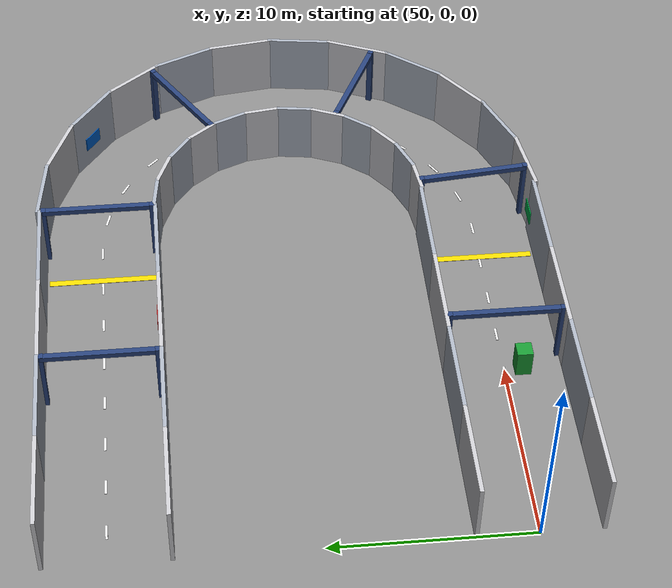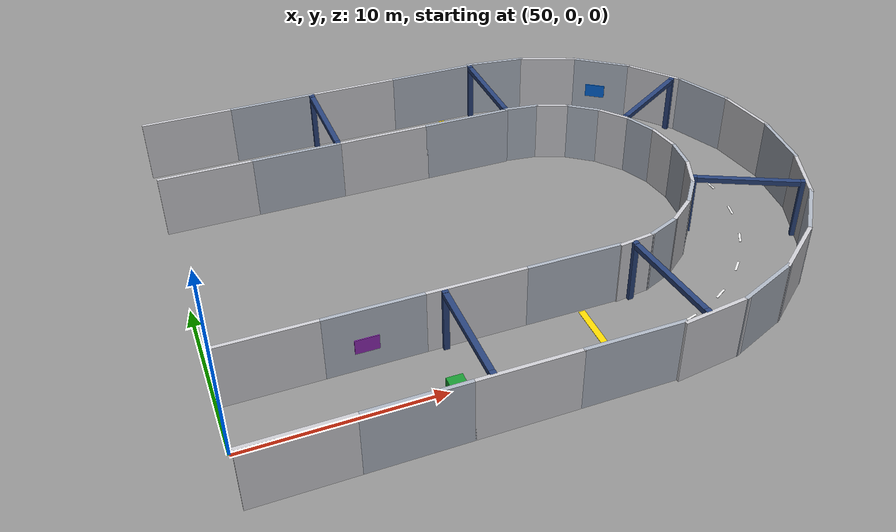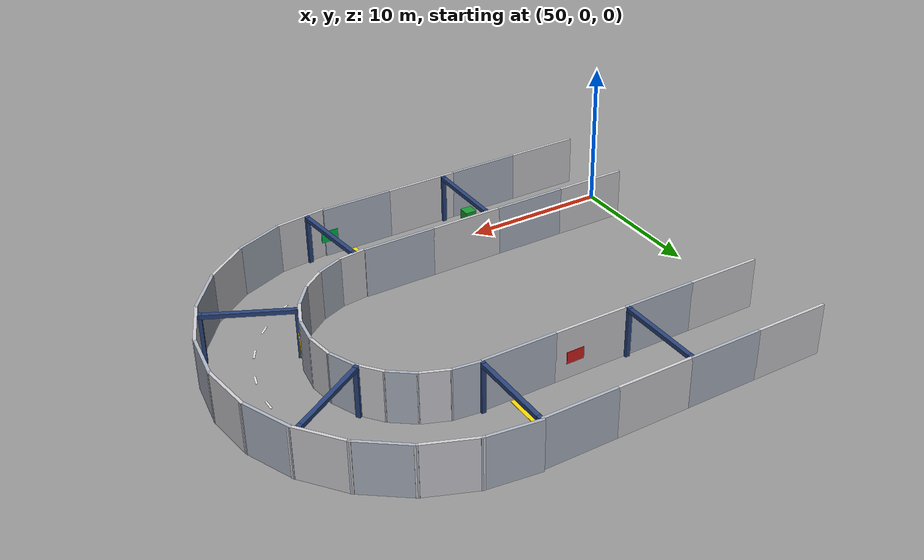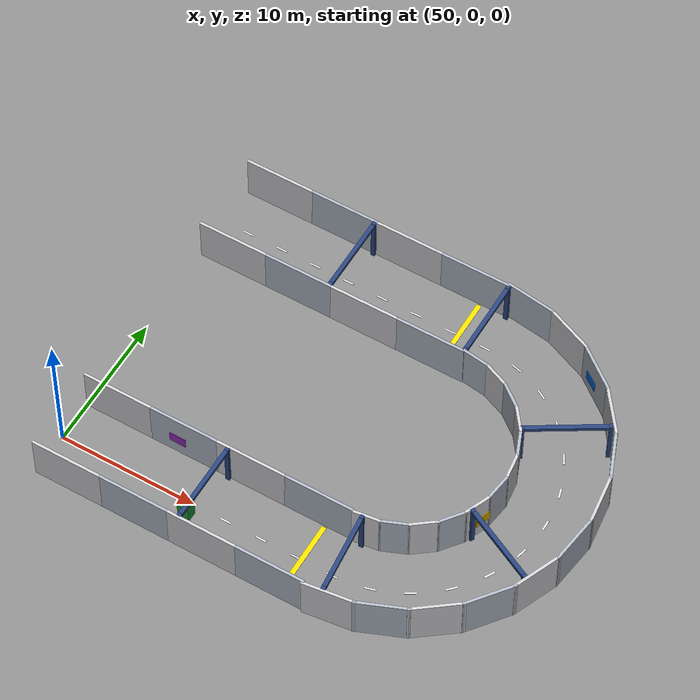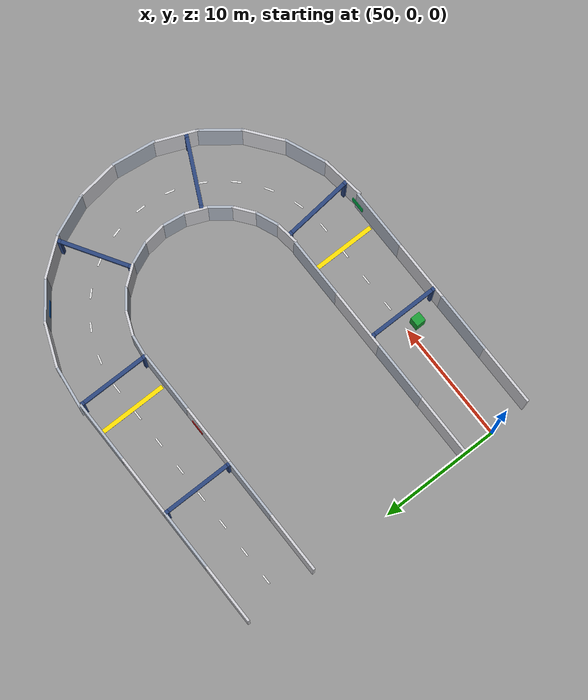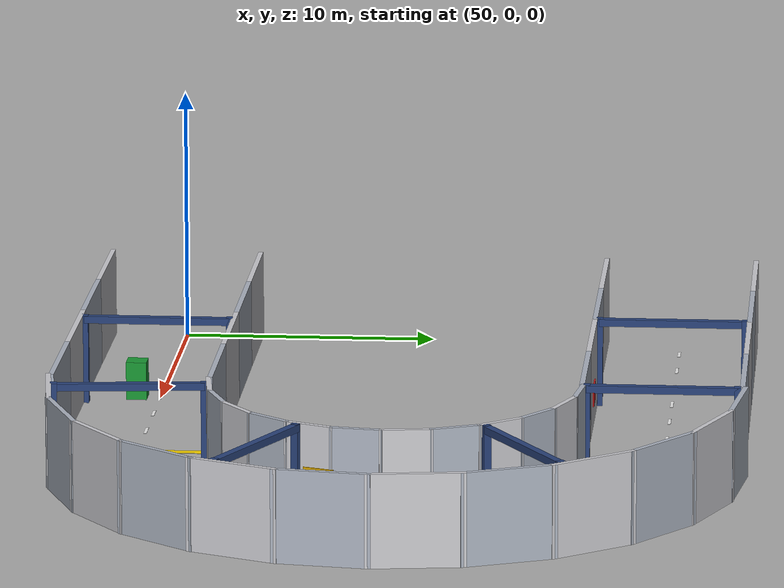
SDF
<sdf version="1.10">
 <world name="tunnel_circuit">
  <model name="tw_Ao_10">
   <static>true</static>
   <pose>52.500 -3.000 1.750 0 0 0.0000</pose>
   <link name="link">
    <collision name="col"><geometry><box><size>5.060 0.200 3.500</size></box></geometry></collision>
    <visual name="vis">
     <geometry><box><size>5.060 0.200 3.500</size></box></geometry>
     <material>
      <ambient>0.50 0.50 0.52 1</ambient>
      <diffuse>0.80 0.80 0.82 1</diffuse>
      <specular>0.1 0.1 0.1 1</specular>
      <pbr>
       <metal><albedo_map>detail.png</albedo_map><roughness>0.92</roughness><metalness>0.0</metalness></metal>
      </pbr>
     </material>
    </visual>
   </link>
  </model>
  <model name="tw_Ao_11">
   <static>true</static>
   <pose>57.500 -3.000 1.750 0 0 0.0000</pose>
   <link name="link">
    <collision name="col"><geometry><box><size>5.060 0.200 3.500</size></box></geometry></collision>
    <visual name="vis">
     <geometry><box><size>5.060 0.200 3.500</size></box></geometry>
     <material>
      <ambient>0.42 0.44 0.48 1</ambient>
      <diffuse>0.68 0.71 0.76 1</diffuse>
      <specular>0.1 0.1 0.1 1</specular>
      <pbr>
       <metal><albedo_map>detail.png</albedo_map><roughness>0.9</roughness><metalness>0.0</metalness></metal>
      </pbr>
     </material>
    </visual>
   </link>
  </model>
  <model name="tw_Ao_12">
   <static>true</static>
   <pose>62.500 -3.000 1.750 0 0 0.0000</pose>
   <link name="link">
    <collision name="col"><geometry><box><size>5.060 0.200 3.500</size></box></geometry></collision>
    <visual name="vis">
     <geometry><box><size>5.060 0.200 3.500</size></box></geometry>
     <material>
      <ambient>0.50 0.50 0.52 1</ambient>
      <diffuse>0.80 0.80 0.82 1</diffuse>
      <specular>0.1 0.1 0.1 1</specular>
      <pbr>
       <metal><albedo_map>detail.png</albedo_map><roughness>0.92</roughness><metalness>0.0</metalness></metal>
      </pbr>
     </material>
    </visual>
   </link>
  </model>
  <model name="tw_Ao_13">
   <static>true</static>
   <pose>67.500 -3.000 1.750 0 0 0.0000</pose>
   <link name="link">
    <collision name="col"><geometry><box><size>5.060 0.200 3.500</size></box></geometry></collision>
    <visual name="vis">
     <geometry><box><size>5.060 0.200 3.500</size></box></geometry>
     <material>
      <ambient>0.42 0.44 0.48 1</ambient>
      <diffuse>0.68 0.71 0.76 1</diffuse>
      <specular>0.1 0.1 0.1 1</specular>
      <pbr>
       <metal><albedo_map>detail.png</albedo_map><roughness>0.9</roughness><metalness>0.0</metalness></metal>
      </pbr>
     </material>
    </visual>
   </link>
  </model>
  <model name="tw_Ai_10">
   <static>true</static>
   <pose>52.500 3.000 1.750 0 0 0.0000</pose>
   <link name="link">
    <collision name="col"><geometry><box><size>5.060 0.200 3.500</size></box></geometry></collision>
    <visual name="vis">
     <geometry><box><size>5.060 0.200 3.500</size></box></geometry>
     <material>
      <ambient>0.50 0.50 0.52 1</ambient>
      <diffuse>0.80 0.80 0.82 1</diffuse>
      <specular>0.1 0.1 0.1 1</specular>
      <pbr>
       <metal><albedo_map>detail.png</albedo_map><roughness>0.92</roughness><metalness>0.0</metalness></metal>
      </pbr>
     </material>
    </visual>
   </link>
  </model>
  <model name="tw_Ai_11">
   <static>true</static>
   <pose>57.500 3.000 1.750 0 0 0.0000</pose>
   <link name="link">
    <collision name="col"><geometry><box><size>5.060 0.200 3.500</size></box></geometry></collision>
    <visual name="vis">
     <geometry><box><size>5.060 0.200 3.500</size></box></geometry>
     <material>
      <ambient>0.42 0.44 0.48 1</ambient>
      <diffuse>0.68 0.71 0.76 1</diffuse>
      <specular>0.1 0.1 0.1 1</specular>
      <pbr>
       <metal><albedo_map>detail.png</albedo_map><roughness>0.9</roughness><metalness>0.0</metalness></metal>
      </pbr>
     </material>
    </visual>
   </link>
  </model>
  <model name="tw_Ai_12">
   <static>true</static>
   <pose>62.500 3.000 1.750 0 0 0.0000</pose>
   <link name="link">
    <collision name="col"><geometry><box><size>5.060 0.200 3.500</size></box></geometry></collision>
    <visual name="vis">
     <geometry><box><size>5.060 0.200 3.500</size></box></geometry>
     <material>
      <ambient>0.50 0.50 0.52 1</ambient>
      <diffuse>0.80 0.80 0.82 1</diffuse>
      <specular>0.1 0.1 0.1 1</specular>
      <pbr>
       <metal><albedo_map>detail.png</albedo_map><roughness>0.92</roughness><metalness>0.0</metalness></metal>
      </pbr>
     </material>
    </visual>
   </link>
  </model>
  <model name="tw_Ai_13">
   <static>true</static>
   <pose>67.500 3.000 1.750 0 0 0.0000</pose>
   <link name="link">
    <collision name="col"><geometry><box><size>5.060 0.200 3.500</size></box></geometry></collision>
    <visual name="vis">
     <geometry><box><size>5.060 0.200 3.500</size></box></geometry>
     <material>
      <ambient>0.42 0.44 0.48 1</ambient>
      <diffuse>0.68 0.71 0.76 1</diffuse>
      <specular>0.1 0.1 0.1 1</specular>
      <pbr>
       <metal><albedo_map>detail.png</albedo_map><roughness>0.9</roughness><metalness>0.0</metalness></metal>
      </pbr>
     </material>
    </visual>
   </link>
  </model>
  <model name="tw_Bo_10">
   <static>true</static>
   <pose>52.500 23.000 1.750 0 0 0.0000</pose>
   <link name="link">
    <collision name="col"><geometry><box><size>5.060 0.200 3.500</size></box></geometry></collision>
    <visual name="vis">
     <geometry><box><size>5.060 0.200 3.500</size></box></geometry>
     <material>
      <ambient>0.50 0.50 0.52 1</ambient>
      <diffuse>0.80 0.80 0.82 1</diffuse>
      <specular>0.1 0.1 0.1 1</specular>
      <pbr>
       <metal><albedo_map>detail.png</albedo_map><roughness>0.92</roughness><metalness>0.0</metalness></metal>
      </pbr>
     </material>
    </visual>
   </link>
  </model>
  <model name="tw_Bo_11">
   <static>true</static>
   <pose>57.500 23.000 1.750 0 0 0.0000</pose>
   <link name="link">
    <collision name="col"><geometry><box><size>5.060 0.200 3.500</size></box></geometry></collision>
    <visual name="vis">
     <geometry><box><size>5.060 0.200 3.500</size></box></geometry>
     <material>
      <ambient>0.42 0.44 0.48 1</ambient>
      <diffuse>0.68 0.71 0.76 1</diffuse>
      <specular>0.1 0.1 0.1 1</specular>
      <pbr>
       <metal><albedo_map>detail.png</albedo_map><roughness>0.9</roughness><metalness>0.0</metalness></metal>
      </pbr>
     </material>
    </visual>
   </link>
  </model>
  <model name="tw_Bo_12">
   <static>true</static>
   <pose>62.500 23.000 1.750 0 0 0.0000</pose>
   <link name="link">
    <collision name="col"><geometry><box><size>5.060 0.200 3.500</size></box></geometry></collision>
    <visual name="vis">
     <geometry><box><size>5.060 0.200 3.500</size></box></geometry>
     <material>
      <ambient>0.50 0.50 0.52 1</ambient>
      <diffuse>0.80 0.80 0.82 1</diffuse>
      <specular>0.1 0.1 0.1 1</specular>
      <pbr>
       <metal><albedo_map>detail.png</albedo_map><roughness>0.92</roughness><metalness>0.0</metalness></metal>
      </pbr>
     </material>
    </visual>
   </link>
  </model>
  <model name="tw_Bo_13">
   <static>true</static>
   <pose>67.500 23.000 1.750 0 0 0.0000</pose>
   <link name="link">
    <collision name="col"><geometry><box><size>5.060 0.200 3.500</size></box></geometry></collision>
    <visual name="vis">
     <geometry><box><size>5.060 0.200 3.500</size></box></geometry>
     <material>
      <ambient>0.42 0.44 0.48 1</ambient>
      <diffuse>0.68 0.71 0.76 1</diffuse>
      <specular>0.1 0.1 0.1 1</specular>
      <pbr>
       <metal><albedo_map>detail.png</albedo_map><roughness>0.9</roughness><metalness>0.0</metalness></metal>
      </pbr>
     </material>
    </visual>
   </link>
  </model>
  <model name="tw_Bi_10">
   <static>true</static>
   <pose>52.500 17.000 1.750 0 0 0.0000</pose>
   <link name="link">
    <collision name="col"><geometry><box><size>5.060 0.200 3.500</size></box></geometry></collision>
    <visual name="vis">
     <geometry><box><size>5.060 0.200 3.500</size></box></geometry>
     <material>
      <ambient>0.50 0.50 0.52 1</ambient>
      <diffuse>0.80 0.80 0.82 1</diffuse>
      <specular>0.1 0.1 0.1 1</specular>
      <pbr>
       <metal><albedo_map>detail.png</albedo_map><roughness>0.92</roughness><metalness>0.0</metalness></metal>
      </pbr>
     </material>
    </visual>
   </link>
  </model>
  <model name="tw_Bi_11">
   <static>true</static>
   <pose>57.500 17.000 1.750 0 0 0.0000</pose>
   <link name="link">
    <collision name="col"><geometry><box><size>5.060 0.200 3.500</size></box></geometry></collision>
    <visual name="vis">
     <geometry><box><size>5.060 0.200 3.500</size></box></geometry>
     <material>
      <ambient>0.42 0.44 0.48 1</ambient>
      <diffuse>0.68 0.71 0.76 1</diffuse>
      <specular>0.1 0.1 0.1 1</specular>
      <pbr>
       <metal><albedo_map>detail.png</albedo_map><roughness>0.9</roughness><metalness>0.0</metalness></metal>
      </pbr>
     </material>
    </visual>
   </link>
  </model>
  <model name="tw_Bi_12">
   <static>true</static>
   <pose>62.500 17.000 1.750 0 0 0.0000</pose>
   <link name="link">
    <collision name="col"><geometry><box><size>5.060 0.200 3.500</size></box></geometry></collision>
    <visual name="vis">
     <geometry><box><size>5.060 0.200 3.500</size></box></geometry>
     <material>
      <ambient>0.50 0.50 0.52 1</ambient>
      <diffuse>0.80 0.80 0.82 1</diffuse>
      <specular>0.1 0.1 0.1 1</specular>
      <pbr>
       <metal><albedo_map>detail.png</albedo_map><roughness>0.92</roughness><metalness>0.0</metalness></metal>
      </pbr>
     </material>
    </visual>
   </link>
  </model>
  <model name="tw_Bi_13">
   <static>true</static>
   <pose>67.500 17.000 1.750 0 0 0.0000</pose>
   <link name="link">
    <collision name="col"><geometry><box><size>5.060 0.200 3.500</size></box></geometry></collision>
    <visual name="vis">
     <geometry><box><size>5.060 0.200 3.500</size></box></geometry>
     <material>
      <ambient>0.42 0.44 0.48 1</ambient>
      <diffuse>0.68 0.71 0.76 1</diffuse>
      <specular>0.1 0.1 0.1 1</specular>
      <pbr>
       <metal><albedo_map>detail.png</albedo_map><roughness>0.9</roughness><metalness>0.0</metalness></metal>
      </pbr>
     </material>
    </visual>
   </link>
  </model>
  <model name="tw_Ro_0">
   <static>true</static>
   <pose>71.697 -2.889 1.750 0 0 0.1309</pose>
   <link name="link">
    <collision name="col"><geometry><box><size>3.665 0.200 3.500</size></box></geometry></collision>
    <visual name="vis">
     <geometry><box><size>3.665 0.200 3.500</size></box></geometry>
     <material>
      <ambient>0.50 0.50 0.52 1</ambient>
      <diffuse>0.80 0.80 0.82 1</diffuse>
      <specular>0.1 0.1 0.1 1</specular>
      <pbr>
       <metal><albedo_map>detail.png</albedo_map><roughness>0.92</roughness><metalness>0.0</metalness></metal>
      </pbr>
     </material>
    </visual>
   </link>
  </model>
  <model name="tw_Ro_1">
   <static>true</static>
   <pose>74.975 -2.010 1.750 0 0 0.3927</pose>
   <link name="link">
    <collision name="col"><geometry><box><size>3.665 0.200 3.500</size></box></geometry></collision>
    <visual name="vis">
     <geometry><box><size>3.665 0.200 3.500</size></box></geometry>
     <material>
      <ambient>0.42 0.44 0.48 1</ambient>
      <diffuse>0.68 0.71 0.76 1</diffuse>
      <specular>0.1 0.1 0.1 1</specular>
      <pbr>
       <metal><albedo_map>detail.png</albedo_map><roughness>0.9</roughness><metalness>0.0</metalness></metal>
      </pbr>
     </material>
    </visual>
   </link>
  </model>
  <model name="tw_Ro_2">
   <static>true</static>
   <pose>77.914 -0.314 1.750 0 0 0.6545</pose>
   <link name="link">
    <collision name="col"><geometry><box><size>3.665 0.200 3.500</size></box></geometry></collision>
    <visual name="vis">
     <geometry><box><size>3.665 0.200 3.500</size></box></geometry>
     <material>
      <ambient>0.50 0.50 0.52 1</ambient>
      <diffuse>0.80 0.80 0.82 1</diffuse>
      <specular>0.1 0.1 0.1 1</specular>
      <pbr>
       <metal><albedo_map>detail.png</albedo_map><roughness>0.92</roughness><metalness>0.0</metalness></metal>
      </pbr>
     </material>
    </visual>
   </link>
  </model>
  <model name="tw_Ro_3">
   <static>true</static>
   <pose>80.314 2.086 1.750 0 0 0.9163</pose>
   <link name="link">
    <collision name="col"><geometry><box><size>3.665 0.200 3.500</size></box></geometry></collision>
    <visual name="vis">
     <geometry><box><size>3.665 0.200 3.500</size></box></geometry>
     <material>
      <ambient>0.42 0.44 0.48 1</ambient>
      <diffuse>0.68 0.71 0.76 1</diffuse>
      <specular>0.1 0.1 0.1 1</specular>
      <pbr>
       <metal><albedo_map>detail.png</albedo_map><roughness>0.9</roughness><metalness>0.0</metalness></metal>
      </pbr>
     </material>
    </visual>
   </link>
  </model>
  <model name="tw_Ro_4">
   <static>true</static>
   <pose>82.010 5.025 1.750 0 0 1.1781</pose>
   <link name="link">
    <collision name="col"><geometry><box><size>3.665 0.200 3.500</size></box></geometry></collision>
    <visual name="vis">
     <geometry><box><size>3.665 0.200 3.500</size></box></geometry>
     <material>
      <ambient>0.50 0.50 0.52 1</ambient>
      <diffuse>0.80 0.80 0.82 1</diffuse>
      <specular>0.1 0.1 0.1 1</specular>
      <pbr>
       <metal><albedo_map>detail.png</albedo_map><roughness>0.92</roughness><metalness>0.0</metalness></metal>
      </pbr>
     </material>
    </visual>
   </link>
  </model>
  <model name="tw_Ro_5">
   <static>true</static>
   <pose>82.889 8.303 1.750 0 0 1.4399</pose>
   <link name="link">
    <collision name="col"><geometry><box><size>3.665 0.200 3.500</size></box></geometry></collision>
    <visual name="vis">
     <geometry><box><size>3.665 0.200 3.500</size></box></geometry>
     <material>
      <ambient>0.42 0.44 0.48 1</ambient>
      <diffuse>0.68 0.71 0.76 1</diffuse>
      <specular>0.1 0.1 0.1 1</specular>
      <pbr>
       <metal><albedo_map>detail.png</albedo_map><roughness>0.9</roughness><metalness>0.0</metalness></metal>
      </pbr>
     </material>
    </visual>
   </link>
  </model>
  <model name="tw_Ro_6">
   <static>true</static>
   <pose>82.889 11.697 1.750 0 0 1.7017</pose>
   <link name="link">
    <collision name="col"><geometry><box><size>3.665 0.200 3.500</size></box></geometry></collision>
    <visual name="vis">
     <geometry><box><size>3.665 0.200 3.500</size></box></geometry>
     <material>
      <ambient>0.50 0.50 0.52 1</ambient>
      <diffuse>0.80 0.80 0.82 1</diffuse>
      <specular>0.1 0.1 0.1 1</specular>
      <pbr>
       <metal><albedo_map>detail.png</albedo_map><roughness>0.92</roughness><metalness>0.0</metalness></metal>
      </pbr>
     </material>
    </visual>
   </link>
  </model>
  <model name="tw_Ro_7">
   <static>true</static>
   <pose>82.010 14.975 1.750 0 0 1.9635</pose>
   <link name="link">
    <collision name="col"><geometry><box><size>3.665 0.200 3.500</size></box></geometry></collision>
    <visual name="vis">
     <geometry><box><size>3.665 0.200 3.500</size></box></geometry>
     <material>
      <ambient>0.42 0.44 0.48 1</ambient>
      <diffuse>0.68 0.71 0.76 1</diffuse>
      <specular>0.1 0.1 0.1 1</specular>
      <pbr>
       <metal><albedo_map>detail.png</albedo_map><roughness>0.9</roughness><metalness>0.0</metalness></metal>
      </pbr>
     </material>
    </visual>
   </link>
  </model>
  <model name="tw_Ro_8">
   <static>true</static>
   <pose>80.314 17.914 1.750 0 0 2.2253</pose>
   <link name="link">
    <collision name="col"><geometry><box><size>3.665 0.200 3.500</size></box></geometry></collision>
    <visual name="vis">
     <geometry><box><size>3.665 0.200 3.500</size></box></geometry>
     <material>
      <ambient>0.50 0.50 0.52 1</ambient>
      <diffuse>0.80 0.80 0.82 1</diffuse>
      <specular>0.1 0.1 0.1 1</specular>
      <pbr>
       <metal><albedo_map>detail.png</albedo_map><roughness>0.92</roughness><metalness>0.0</metalness></metal>
      </pbr>
     </material>
    </visual>
   </link>
  </model>
  <model name="tw_Ro_9">
   <static>true</static>
   <pose>77.914 20.314 1.750 0 0 2.4871</pose>
   <link name="link">
    <collision name="col"><geometry><box><size>3.665 0.200 3.500</size></box></geometry></collision>
    <visual name="vis">
     <geometry><box><size>3.665 0.200 3.500</size></box></geometry>
     <material>
      <ambient>0.42 0.44 0.48 1</ambient>
      <diffuse>0.68 0.71 0.76 1</diffuse>
      <specular>0.1 0.1 0.1 1</specular>
      <pbr>
       <metal><albedo_map>detail.png</albedo_map><roughness>0.9</roughness><metalness>0.0</metalness></metal>
      </pbr>
     </material>
    </visual>
   </link>
  </model>
  <model name="tw_Ro_10">
   <static>true</static>
   <pose>74.975 22.010 1.750 0 0 2.7489</pose>
   <link name="link">
    <collision name="col"><geometry><box><size>3.665 0.200 3.500</size></box></geometry></collision>
    <visual name="vis">
     <geometry><box><size>3.665 0.200 3.500</size></box></geometry>
     <material>
      <ambient>0.50 0.50 0.52 1</ambient>
      <diffuse>0.80 0.80 0.82 1</diffuse>
      <specular>0.1 0.1 0.1 1</specular>
      <pbr>
       <metal><albedo_map>detail.png</albedo_map><roughness>0.92</roughness><metalness>0.0</metalness></metal>
      </pbr>
     </material>
    </visual>
   </link>
  </model>
  <model name="tw_Ro_11">
   <static>true</static>
   <pose>71.697 22.889 1.750 0 0 3.0107</pose>
   <link name="link">
    <collision name="col"><geometry><box><size>3.665 0.200 3.500</size></box></geometry></collision>
    <visual name="vis">
     <geometry><box><size>3.665 0.200 3.500</size></box></geometry>
     <material>
      <ambient>0.42 0.44 0.48 1</ambient>
      <diffuse>0.68 0.71 0.76 1</diffuse>
      <specular>0.1 0.1 0.1 1</specular>
      <pbr>
       <metal><albedo_map>detail.png</albedo_map><roughness>0.9</roughness><metalness>0.0</metalness></metal>
      </pbr>
     </material>
    </visual>
   </link>
  </model>
  <model name="tw_Ri_0">
   <static>true</static>
   <pose>70.914 3.060 1.750 0 0 0.1309</pose>
   <link name="link">
    <collision name="col"><geometry><box><size>1.974 0.200 3.500</size></box></geometry></collision>
    <visual name="vis">
     <geometry><box><size>1.974 0.200 3.500</size></box></geometry>
     <material>
      <ambient>0.50 0.50 0.52 1</ambient>
      <diffuse>0.80 0.80 0.82 1</diffuse>
      <specular>0.1 0.1 0.1 1</specular>
      <pbr>
       <metal><albedo_map>detail.png</albedo_map><roughness>0.92</roughness><metalness>0.0</metalness></metal>
      </pbr>
     </material>
    </visual>
   </link>
  </model>
  <model name="tw_Ri_1">
   <static>true</static>
   <pose>72.679 3.533 1.750 0 0 0.3927</pose>
   <link name="link">
    <collision name="col"><geometry><box><size>1.974 0.200 3.500</size></box></geometry></collision>
    <visual name="vis">
     <geometry><box><size>1.974 0.200 3.500</size></box></geometry>
     <material>
      <ambient>0.42 0.44 0.48 1</ambient>
      <diffuse>0.68 0.71 0.76 1</diffuse>
      <specular>0.1 0.1 0.1 1</specular>
      <pbr>
       <metal><albedo_map>detail.png</albedo_map><roughness>0.9</roughness><metalness>0.0</metalness></metal>
      </pbr>
     </material>
    </visual>
   </link>
  </model>
  <model name="tw_Ri_2">
   <static>true</static>
   <pose>74.261 4.447 1.750 0 0 0.6545</pose>
   <link name="link">
    <collision name="col"><geometry><box><size>1.974 0.200 3.500</size></box></geometry></collision>
    <visual name="vis">
     <geometry><box><size>1.974 0.200 3.500</size></box></geometry>
     <material>
      <ambient>0.50 0.50 0.52 1</ambient>
      <diffuse>0.80 0.80 0.82 1</diffuse>
      <specular>0.1 0.1 0.1 1</specular>
      <pbr>
       <metal><albedo_map>detail.png</albedo_map><roughness>0.92</roughness><metalness>0.0</metalness></metal>
      </pbr>
     </material>
    </visual>
   </link>
  </model>
  <model name="tw_Ri_3">
   <static>true</static>
   <pose>75.553 5.739 1.750 0 0 0.9163</pose>
   <link name="link">
    <collision name="col"><geometry><box><size>1.974 0.200 3.500</size></box></geometry></collision>
    <visual name="vis">
     <geometry><box><size>1.974 0.200 3.500</size></box></geometry>
     <material>
      <ambient>0.42 0.44 0.48 1</ambient>
      <diffuse>0.68 0.71 0.76 1</diffuse>
      <specular>0.1 0.1 0.1 1</specular>
      <pbr>
       <metal><albedo_map>detail.png</albedo_map><roughness>0.9</roughness><metalness>0.0</metalness></metal>
      </pbr>
     </material>
    </visual>
   </link>
  </model>
  <model name="tw_Ri_4">
   <static>true</static>
   <pose>76.467 7.321 1.750 0 0 1.1781</pose>
   <link name="link">
    <collision name="col"><geometry><box><size>1.974 0.200 3.500</size></box></geometry></collision>
    <visual name="vis">
     <geometry><box><size>1.974 0.200 3.500</size></box></geometry>
     <material>
      <ambient>0.50 0.50 0.52 1</ambient>
      <diffuse>0.80 0.80 0.82 1</diffuse>
      <specular>0.1 0.1 0.1 1</specular>
      <pbr>
       <metal><albedo_map>detail.png</albedo_map><roughness>0.92</roughness><metalness>0.0</metalness></metal>
      </pbr>
     </material>
    </visual>
   </link>
  </model>
  <model name="tw_Ri_5">
   <static>true</static>
   <pose>76.940 9.086 1.750 0 0 1.4399</pose>
   <link name="link">
    <collision name="col"><geometry><box><size>1.974 0.200 3.500</size></box></geometry></collision>
    <visual name="vis">
     <geometry><box><size>1.974 0.200 3.500</size></box></geometry>
     <material>
      <ambient>0.42 0.44 0.48 1</ambient>
      <diffuse>0.68 0.71 0.76 1</diffuse>
      <specular>0.1 0.1 0.1 1</specular>
      <pbr>
       <metal><albedo_map>detail.png</albedo_map><roughness>0.9</roughness><metalness>0.0</metalness></metal>
      </pbr>
     </material>
    </visual>
   </link>
  </model>
  <model name="tw_Ri_6">
   <static>true</static>
   <pose>76.940 10.914 1.750 0 0 1.7017</pose>
   <link name="link">
    <collision name="col"><geometry><box><size>1.974 0.200 3.500</size></box></geometry></collision>
    <visual name="vis">
     <geometry><box><size>1.974 0.200 3.500</size></box></geometry>
     <material>
      <ambient>0.50 0.50 0.52 1</ambient>
      <diffuse>0.80 0.80 0.82 1</diffuse>
      <specular>0.1 0.1 0.1 1</specular>
      <pbr>
       <metal><albedo_map>detail.png</albedo_map><roughness>0.92</roughness><metalness>0.0</metalness></metal>
      </pbr>
     </material>
    </visual>
   </link>
  </model>
  <model name="tw_Ri_7">
   <static>true</static>
   <pose>76.467 12.679 1.750 0 0 1.9635</pose>
   <link name="link">
    <collision name="col"><geometry><box><size>1.974 0.200 3.500</size></box></geometry></collision>
    <visual name="vis">
     <geometry><box><size>1.974 0.200 3.500</size></box></geometry>
     <material>
      <ambient>0.42 0.44 0.48 1</ambient>
      <diffuse>0.68 0.71 0.76 1</diffuse>
      <specular>0.1 0.1 0.1 1</specular>
      <pbr>
       <metal><albedo_map>detail.png</albedo_map><roughness>0.9</roughness><metalness>0.0</metalness></metal>
      </pbr>
     </material>
    </visual>
   </link>
  </model>
  <model name="tw_Ri_8">
   <static>true</static>
   <pose>75.553 14.261 1.750 0 0 2.2253</pose>
   <link name="link">
    <collision name="col"><geometry><box><size>1.974 0.200 3.500</size></box></geometry></collision>
    <visual name="vis">
     <geometry><box><size>1.974 0.200 3.500</size></box></geometry>
     <material>
      <ambient>0.50 0.50 0.52 1</ambient>
      <diffuse>0.80 0.80 0.82 1</diffuse>
      <specular>0.1 0.1 0.1 1</specular>
      <pbr>
       <metal><albedo_map>detail.png</albedo_map><roughness>0.92</roughness><metalness>0.0</metalness></metal>
      </pbr>
     </material>
    </visual>
   </link>
  </model>
  <model name="tw_Ri_9">
   <static>true</static>
   <pose>74.261 15.553 1.750 0 0 2.4871</pose>
   <link name="link">
    <collision name="col"><geometry><box><size>1.974 0.200 3.500</size></box></geometry></collision>
    <visual name="vis">
     <geometry><box><size>1.974 0.200 3.500</size></box></geometry>
     <material>
      <ambient>0.42 0.44 0.48 1</ambient>
      <diffuse>0.68 0.71 0.76 1</diffuse>
      <specular>0.1 0.1 0.1 1</specular>
      <pbr>
       <metal><albedo_map>detail.png</albedo_map><roughness>0.9</roughness><metalness>0.0</metalness></metal>
      </pbr>
     </material>
    </visual>
   </link>
  </model>
  <model name="tw_Ri_10">
   <static>true</static>
   <pose>72.679 16.467 1.750 0 0 2.7489</pose>
   <link name="link">
    <collision name="col"><geometry><box><size>1.974 0.200 3.500</size></box></geometry></collision>
    <visual name="vis">
     <geometry><box><size>1.974 0.200 3.500</size></box></geometry>
     <material>
      <ambient>0.50 0.50 0.52 1</ambient>
      <diffuse>0.80 0.80 0.82 1</diffuse>
      <specular>0.1 0.1 0.1 1</specular>
      <pbr>
       <metal><albedo_map>detail.png</albedo_map><roughness>0.92</roughness><metalness>0.0</metalness></metal>
      </pbr>
     </material>
    </visual>
   </link>
  </model>
  <model name="tw_Ri_11">
   <static>true</static>
   <pose>70.914 16.940 1.750 0 0 3.0107</pose>
   <link name="link">
    <collision name="col"><geometry><box><size>1.974 0.200 3.500</size></box></geometry></collision>
    <visual name="vis">
     <geometry><box><size>1.974 0.200 3.500</size></box></geometry>
     <material>
      <ambient>0.42 0.44 0.48 1</ambient>
      <diffuse>0.68 0.71 0.76 1</diffuse>
      <specular>0.1 0.1 0.1 1</specular>
      <pbr>
       <metal><albedo_map>detail.png</albedo_map><roughness>0.9</roughness><metalness>0.0</metalness></metal>
      </pbr>
     </material>
    </visual>
   </link>
  </model>
  <model name="rib6_p">
   <static>true</static>
   <pose>60.850 2.820 1.750 0 0 0.0000</pose>
   <link name="link">
    <collision name="col"><geometry><box><size>0.300 0.250 3.500</size></box></geometry></collision>
    <visual name="vis">
     <geometry><box><size>0.300 0.250 3.500</size></box></geometry>
     <material>
      <ambient>0.10 0.16 0.30 1</ambient>
      <diffuse>0.16 0.26 0.48 1</diffuse>
      <specular>0.3 0.3 0.35 1</specular>
     </material>
    </visual>
   </link>
  </model>
  <model name="rib6_m">
   <static>true</static>
   <pose>60.850 -2.820 1.750 0 0 0.0000</pose>
   <link name="link">
    <collision name="col"><geometry><box><size>0.300 0.250 3.500</size></box></geometry></collision>
    <visual name="vis">
     <geometry><box><size>0.300 0.250 3.500</size></box></geometry>
     <material>
      <ambient>0.10 0.16 0.30 1</ambient>
      <diffuse>0.16 0.26 0.48 1</diffuse>
      <specular>0.3 0.3 0.35 1</specular>
     </material>
    </visual>
   </link>
  </model>
  <model name="rib6_c">
   <static>true</static>
   <pose>60.850 0.000 3.340 0 0 0.0000</pose>
   <link name="link">
    <collision name="col"><geometry><box><size>0.300 5.700 0.280</size></box></geometry></collision>
    <visual name="vis">
     <geometry><box><size>0.300 5.700 0.280</size></box></geometry>
     <material>
      <ambient>0.10 0.16 0.30 1</ambient>
      <diffuse>0.16 0.26 0.48 1</diffuse>
      <specular>0.3 0.3 0.35 1</specular>
     </material>
    </visual>
   </link>
  </model>
  <model name="rib7_p">
   <static>true</static>
   <pose>70.710 2.855 1.750 0 0 0.0991</pose>
   <link name="link">
    <collision name="col"><geometry><box><size>0.300 0.250 3.500</size></box></geometry></collision>
    <visual name="vis">
     <geometry><box><size>0.300 0.250 3.500</size></box></geometry>
     <material>
      <ambient>0.10 0.16 0.30 1</ambient>
      <diffuse>0.16 0.26 0.48 1</diffuse>
      <specular>0.3 0.3 0.35 1</specular>
     </material>
    </visual>
   </link>
  </model>
  <model name="rib7_m">
   <static>true</static>
   <pose>71.269 -2.757 1.750 0 0 0.0991</pose>
   <link name="link">
    <collision name="col"><geometry><box><size>0.300 0.250 3.500</size></box></geometry></collision>
    <visual name="vis">
     <geometry><box><size>0.300 0.250 3.500</size></box></geometry>
     <material>
      <ambient>0.10 0.16 0.30 1</ambient>
      <diffuse>0.16 0.26 0.48 1</diffuse>
      <specular>0.3 0.3 0.35 1</specular>
     </material>
    </visual>
   </link>
  </model>
  <model name="rib7_c">
   <static>true</static>
   <pose>70.990 0.049 3.340 0 0 0.0991</pose>
   <link name="link">
    <collision name="col"><geometry><box><size>0.300 5.700 0.280</size></box></geometry></collision>
    <visual name="vis">
     <geometry><box><size>0.300 5.700 0.280</size></box></geometry>
     <material>
      <ambient>0.10 0.16 0.30 1</ambient>
      <diffuse>0.16 0.26 0.48 1</diffuse>
      <specular>0.3 0.3 0.35 1</specular>
     </material>
    </visual>
   </link>
  </model>
  <model name="rib8_p">
   <static>true</static>
   <pose>76.442 6.828 1.750 0 0 1.1133</pose>
   <link name="link">
    <collision name="col"><geometry><box><size>0.300 0.250 3.500</size></box></geometry></collision>
    <visual name="vis">
     <geometry><box><size>0.300 0.250 3.500</size></box></geometry>
     <material>
      <ambient>0.10 0.16 0.30 1</ambient>
      <diffuse>0.16 0.26 0.48 1</diffuse>
      <specular>0.3 0.3 0.35 1</specular>
     </material>
    </visual>
   </link>
  </model>
  <model name="rib8_m">
   <static>true</static>
   <pose>81.501 4.337 1.750 0 0 1.1133</pose>
   <link name="link">
    <collision name="col"><geometry><box><size>0.300 0.250 3.500</size></box></geometry></collision>
    <visual name="vis">
     <geometry><box><size>0.300 0.250 3.500</size></box></geometry>
     <material>
      <ambient>0.10 0.16 0.30 1</ambient>
      <diffuse>0.16 0.26 0.48 1</diffuse>
      <specular>0.3 0.3 0.35 1</specular>
     </material>
    </visual>
   </link>
  </model>
  <model name="rib8_c">
   <static>true</static>
   <pose>78.971 5.583 3.340 0 0 1.1133</pose>
   <link name="link">
    <collision name="col"><geometry><box><size>0.300 5.700 0.280</size></box></geometry></collision>
    <visual name="vis">
     <geometry><box><size>0.300 5.700 0.280</size></box></geometry>
     <material>
      <ambient>0.10 0.16 0.30 1</ambient>
      <diffuse>0.16 0.26 0.48 1</diffuse>
      <specular>0.3 0.3 0.35 1</specular>
     </material>
    </visual>
   </link>
  </model>
  <model name="rib9_p">
   <static>true</static>
   <pose>76.096 13.793 1.750 0 0 2.1274</pose>
   <link name="link">
    <collision name="col"><geometry><box><size>0.300 0.250 3.500</size></box></geometry></collision>
    <visual name="vis">
     <geometry><box><size>0.300 0.250 3.500</size></box></geometry>
     <material>
      <ambient>0.10 0.16 0.30 1</ambient>
      <diffuse>0.16 0.26 0.48 1</diffuse>
      <specular>0.3 0.3 0.35 1</specular>
     </material>
    </visual>
   </link>
  </model>
  <model name="rib9_m">
   <static>true</static>
   <pose>80.885 16.773 1.750 0 0 2.1274</pose>
   <link name="link">
    <collision name="col"><geometry><box><size>0.300 0.250 3.500</size></box></geometry></collision>
    <visual name="vis">
     <geometry><box><size>0.300 0.250 3.500</size></box></geometry>
     <material>
      <ambient>0.10 0.16 0.30 1</ambient>
      <diffuse>0.16 0.26 0.48 1</diffuse>
      <specular>0.3 0.3 0.35 1</specular>
     </material>
    </visual>
   </link>
  </model>
  <model name="rib9_c">
   <static>true</static>
   <pose>78.490 15.283 3.340 0 0 2.1274</pose>
   <link name="link">
    <collision name="col"><geometry><box><size>0.300 5.700 0.280</size></box></geometry></collision>
    <visual name="vis">
     <geometry><box><size>0.300 5.700 0.280</size></box></geometry>
     <material>
      <ambient>0.10 0.16 0.30 1</ambient>
      <diffuse>0.16 0.26 0.48 1</diffuse>
      <specular>0.3 0.3 0.35 1</specular>
     </material>
    </visual>
   </link>
  </model>
  <model name="rib10_p">
   <static>true</static>
   <pose>70.000 17.180 1.750 0 0 3.1416</pose>
   <link name="link">
    <collision name="col"><geometry><box><size>0.300 0.250 3.500</size></box></geometry></collision>
    <visual name="vis">
     <geometry><box><size>0.300 0.250 3.500</size></box></geometry>
     <material>
      <ambient>0.10 0.16 0.30 1</ambient>
      <diffuse>0.16 0.26 0.48 1</diffuse>
      <specular>0.3 0.3 0.35 1</specular>
     </material>
    </visual>
   </link>
  </model>
  <model name="rib10_m">
   <static>true</static>
   <pose>70.000 22.820 1.750 0 0 3.1416</pose>
   <link name="link">
    <collision name="col"><geometry><box><size>0.300 0.250 3.500</size></box></geometry></collision>
    <visual name="vis">
     <geometry><box><size>0.300 0.250 3.500</size></box></geometry>
     <material>
      <ambient>0.10 0.16 0.30 1</ambient>
      <diffuse>0.16 0.26 0.48 1</diffuse>
      <specular>0.3 0.3 0.35 1</specular>
     </material>
    </visual>
   </link>
  </model>
  <model name="rib10_c">
   <static>true</static>
   <pose>70.000 20.000 3.340 0 0 3.1416</pose>
   <link name="link">
    <collision name="col"><geometry><box><size>0.300 5.700 0.280</size></box></geometry></collision>
    <visual name="vis">
     <geometry><box><size>0.300 5.700 0.280</size></box></geometry>
     <material>
      <ambient>0.10 0.16 0.30 1</ambient>
      <diffuse>0.16 0.26 0.48 1</diffuse>
      <specular>0.3 0.3 0.35 1</specular>
     </material>
    </visual>
   </link>
  </model>
  <model name="rib11_p">
   <static>true</static>
   <pose>59.858 17.180 1.750 0 0 3.1416</pose>
   <link name="link">
    <collision name="col"><geometry><box><size>0.300 0.250 3.500</size></box></geometry></collision>
    <visual name="vis">
     <geometry><box><size>0.300 0.250 3.500</size></box></geometry>
     <material>
      <ambient>0.10 0.16 0.30 1</ambient>
      <diffuse>0.16 0.26 0.48 1</diffuse>
      <specular>0.3 0.3 0.35 1</specular>
     </material>
    </visual>
   </link>
  </model>
  <model name="rib11_m">
   <static>true</static>
   <pose>59.858 22.820 1.750 0 0 3.1416</pose>
   <link name="link">
    <collision name="col"><geometry><box><size>0.300 0.250 3.500</size></box></geometry></collision>
    <visual name="vis">
     <geometry><box><size>0.300 0.250 3.500</size></box></geometry>
     <material>
      <ambient>0.10 0.16 0.30 1</ambient>
      <diffuse>0.16 0.26 0.48 1</diffuse>
      <specular>0.3 0.3 0.35 1</specular>
     </material>
    </visual>
   </link>
  </model>
  <model name="rib11_c">
   <static>true</static>
   <pose>59.858 20.000 3.340 0 0 3.1416</pose>
   <link name="link">
    <collision name="col"><geometry><box><size>0.300 5.700 0.280</size></box></geometry></collision>
    <visual name="vis">
     <geometry><box><size>0.300 5.700 0.280</size></box></geometry>
     <material>
      <ambient>0.10 0.16 0.30 1</ambient>
      <diffuse>0.16 0.26 0.48 1</diffuse>
      <specular>0.3 0.3 0.35 1</specular>
     </material>
    </visual>
   </link>
  </model>
  <model name="sign4">
   <static>true</static>
   <pose>57.046 2.840 1.500 0 0 0.0000</pose>
   <link name="link">
    <visual name="vis">
     <geometry><box><size>1.200 0.050 0.800</size></box></geometry>
     <material>
      <ambient>0.35 0.10 0.45 1</ambient>
      <diffuse>0.55 0.16 0.70 1</diffuse>
      <specular>0.1 0.1 0.1 1</specular>
     </material>
    </visual>
   </link>
  </model>
  <model name="sign5">
   <static>true</static>
   <pose>69.723 -2.840 1.500 0 0 0.0000</pose>
   <link name="link">
    <visual name="vis">
     <geometry><box><size>1.200 0.050 0.800</size></box></geometry>
     <material>
      <ambient>0.0 0.5 0.2 1</ambient>
      <diffuse>0.0 0.7 0.3 1</diffuse>
      <specular>0.1 0.1 0.1 1</specular>
     </material>
    </visual>
   </link>
  </model>
  <model name="sign6">
   <static>true</static>
   <pose>76.772 7.675 1.500 0 0 1.2400</pose>
   <link name="link">
    <visual name="vis">
     <geometry><box><size>1.200 0.050 0.800</size></box></geometry>
     <material>
      <ambient>0.6 0.45 0.0 1</ambient>
      <diffuse>0.85 0.65 0.0 1</diffuse>
      <specular>0.1 0.1 0.1 1</specular>
     </material>
    </visual>
   </link>
  </model>
  <model name="sign7">
   <static>true</static>
   <pose>77.605 20.346 1.500 0 0 2.5077</pose>
   <link name="link">
    <visual name="vis">
     <geometry><box><size>1.200 0.050 0.800</size></box></geometry>
     <material>
      <ambient>0.0 0.3 0.6 1</ambient>
      <diffuse>0.0 0.4 0.85 1</diffuse>
      <specular>0.1 0.1 0.1 1</specular>
     </material>
    </visual>
   </link>
  </model>
  <model name="sign8">
   <static>true</static>
   <pose>63.662 17.160 1.500 0 0 3.1416</pose>
   <link name="link">
    <visual name="vis">
     <geometry><box><size>1.200 0.050 0.800</size></box></geometry>
     <material>
      <ambient>0.55 0.08 0.08 1</ambient>
      <diffuse>0.82 0.12 0.12 1</diffuse>
      <specular>0.1 0.1 0.1 1</specular>
     </material>
    </visual>
   </link>
  </model>
  <model name="dash20">
   <static>true</static>
   <pose>52.008 0.000 0.012 0 0 0.0000</pose>
   <link name="link">
    <visual name="vis">
     <geometry><box><size>0.800 0.120 0.020</size></box></geometry>
     <material>
      <ambient>0.7 0.7 0.7 1</ambient>
      <diffuse>0.92 0.92 0.92 1</diffuse>
      <specular>0.1 0.1 0.1 1</specular>
     </material>
    </visual>
   </link>
  </model>
  <model name="dash21">
   <static>true</static>
   <pose>54.609 0.000 0.012 0 0 0.0000</pose>
   <link name="link">
    <visual name="vis">
     <geometry><box><size>0.800 0.120 0.020</size></box></geometry>
     <material>
      <ambient>0.7 0.7 0.7 1</ambient>
      <diffuse>0.92 0.92 0.92 1</diffuse>
      <specular>0.1 0.1 0.1 1</specular>
     </material>
    </visual>
   </link>
  </model>
  <model name="dash22">
   <static>true</static>
   <pose>57.209 0.000 0.012 0 0 0.0000</pose>
   <link name="link">
    <visual name="vis">
     <geometry><box><size>0.800 0.120 0.020</size></box></geometry>
     <material>
      <ambient>0.7 0.7 0.7 1</ambient>
      <diffuse>0.92 0.92 0.92 1</diffuse>
      <specular>0.1 0.1 0.1 1</specular>
     </material>
    </visual>
   </link>
  </model>
  <model name="dash23">
   <static>true</static>
   <pose>59.809 0.000 0.012 0 0 0.0000</pose>
   <link name="link">
    <visual name="vis">
     <geometry><box><size>0.800 0.120 0.020</size></box></geometry>
     <material>
      <ambient>0.7 0.7 0.7 1</ambient>
      <diffuse>0.92 0.92 0.92 1</diffuse>
      <specular>0.1 0.1 0.1 1</specular>
     </material>
    </visual>
   </link>
  </model>
  <model name="dash24">
   <static>true</static>
   <pose>62.410 0.000 0.012 0 0 0.0000</pose>
   <link name="link">
    <visual name="vis">
     <geometry><box><size>0.800 0.120 0.020</size></box></geometry>
     <material>
      <ambient>0.7 0.7 0.7 1</ambient>
      <diffuse>0.92 0.92 0.92 1</diffuse>
      <specular>0.1 0.1 0.1 1</specular>
     </material>
    </visual>
   </link>
  </model>
  <model name="dash25">
   <static>true</static>
   <pose>65.010 0.000 0.012 0 0 0.0000</pose>
   <link name="link">
    <visual name="vis">
     <geometry><box><size>0.800 0.120 0.020</size></box></geometry>
     <material>
      <ambient>0.7 0.7 0.7 1</ambient>
      <diffuse>0.92 0.92 0.92 1</diffuse>
      <specular>0.1 0.1 0.1 1</specular>
     </material>
    </visual>
   </link>
  </model>
  <model name="dash26">
   <static>true</static>
   <pose>67.611 0.000 0.012 0 0 0.0000</pose>
   <link name="link">
    <visual name="vis">
     <geometry><box><size>0.800 0.120 0.020</size></box></geometry>
     <material>
      <ambient>0.7 0.7 0.7 1</ambient>
      <diffuse>0.92 0.92 0.92 1</diffuse>
      <specular>0.1 0.1 0.1 1</specular>
     </material>
    </visual>
   </link>
  </model>
  <model name="dash27">
   <static>true</static>
   <pose>70.211 0.002 0.012 0 0 0.0211</pose>
   <link name="link">
    <visual name="vis">
     <geometry><box><size>0.800 0.120 0.020</size></box></geometry>
     <material>
      <ambient>0.7 0.7 0.7 1</ambient>
      <diffuse>0.92 0.92 0.92 1</diffuse>
      <specular>0.1 0.1 0.1 1</specular>
     </material>
    </visual>
   </link>
  </model>
  <model name="dash28">
   <static>true</static>
   <pose>72.775 0.393 0.012 0 0 0.2811</pose>
   <link name="link">
    <visual name="vis">
     <geometry><box><size>0.800 0.120 0.020</size></box></geometry>
     <material>
      <ambient>0.7 0.7 0.7 1</ambient>
      <diffuse>0.92 0.92 0.92 1</diffuse>
      <specular>0.1 0.1 0.1 1</specular>
     </material>
    </visual>
   </link>
  </model>
  <model name="dash29">
   <static>true</static>
   <pose>75.152 1.429 0.012 0 0 0.5412</pose>
   <link name="link">
    <visual name="vis">
     <geometry><box><size>0.800 0.120 0.020</size></box></geometry>
     <material>
      <ambient>0.7 0.7 0.7 1</ambient>
      <diffuse>0.92 0.92 0.92 1</diffuse>
      <specular>0.1 0.1 0.1 1</specular>
     </material>
    </visual>
   </link>
  </model>
  <model name="dash30">
   <static>true</static>
   <pose>77.182 3.042 0.012 0 0 0.8012</pose>
   <link name="link">
    <visual name="vis">
     <geometry><box><size>0.800 0.120 0.020</size></box></geometry>
     <material>
      <ambient>0.7 0.7 0.7 1</ambient>
      <diffuse>0.92 0.92 0.92 1</diffuse>
      <specular>0.1 0.1 0.1 1</specular>
     </material>
    </visual>
   </link>
  </model>
  <model name="dash31">
   <static>true</static>
   <pose>78.730 5.122 0.012 0 0 1.0613</pose>
   <link name="link">
    <visual name="vis">
     <geometry><box><size>0.800 0.120 0.020</size></box></geometry>
     <material>
      <ambient>0.7 0.7 0.7 1</ambient>
      <diffuse>0.92 0.92 0.92 1</diffuse>
      <specular>0.1 0.1 0.1 1</specular>
     </material>
    </visual>
   </link>
  </model>
  <model name="dash32">
   <static>true</static>
   <pose>79.690 7.531 0.012 0 0 1.3213</pose>
   <link name="link">
    <visual name="vis">
     <geometry><box><size>0.800 0.120 0.020</size></box></geometry>
     <material>
      <ambient>0.7 0.7 0.7 1</ambient>
      <diffuse>0.92 0.92 0.92 1</diffuse>
      <specular>0.1 0.1 0.1 1</specular>
     </material>
    </visual>
   </link>
  </model>
  <model name="dash33">
   <static>true</static>
   <pose>79.999 10.106 0.012 0 0 1.5813</pose>
   <link name="link">
    <visual name="vis">
     <geometry><box><size>0.800 0.120 0.020</size></box></geometry>
     <material>
      <ambient>0.7 0.7 0.7 1</ambient>
      <diffuse>0.92 0.92 0.92 1</diffuse>
      <specular>0.1 0.1 0.1 1</specular>
     </material>
    </visual>
   </link>
  </model>
  <model name="dash34">
   <static>true</static>
   <pose>79.636 12.673 0.012 0 0 1.8414</pose>
   <link name="link">
    <visual name="vis">
     <geometry><box><size>0.800 0.120 0.020</size></box></geometry>
     <material>
      <ambient>0.7 0.7 0.7 1</ambient>
      <diffuse>0.92 0.92 0.92 1</diffuse>
      <specular>0.1 0.1 0.1 1</specular>
     </material>
    </visual>
   </link>
  </model>
  <model name="dash35">
   <static>true</static>
   <pose>78.625 15.061 0.012 0 0 2.1014</pose>
   <link name="link">
    <visual name="vis">
     <geometry><box><size>0.800 0.120 0.020</size></box></geometry>
     <material>
      <ambient>0.7 0.7 0.7 1</ambient>
      <diffuse>0.92 0.92 0.92 1</diffuse>
      <specular>0.1 0.1 0.1 1</specular>
     </material>
    </visual>
   </link>
  </model>
  <model name="dash36">
   <static>true</static>
   <pose>77.034 17.108 0.012 0 0 2.3615</pose>
   <link name="link">
    <visual name="vis">
     <geometry><box><size>0.800 0.120 0.020</size></box></geometry>
     <material>
      <ambient>0.7 0.7 0.7 1</ambient>
      <diffuse>0.92 0.92 0.92 1</diffuse>
      <specular>0.1 0.1 0.1 1</specular>
     </material>
    </visual>
   </link>
  </model>
  <model name="dash37">
   <static>true</static>
   <pose>74.970 18.678 0.012 0 0 2.6215</pose>
   <link name="link">
    <visual name="vis">
     <geometry><box><size>0.800 0.120 0.020</size></box></geometry>
     <material>
      <ambient>0.7 0.7 0.7 1</ambient>
      <diffuse>0.92 0.92 0.92 1</diffuse>
      <specular>0.1 0.1 0.1 1</specular>
     </material>
    </visual>
   </link>
  </model>
  <model name="dash38">
   <static>true</static>
   <pose>72.571 19.664 0.012 0 0 2.8816</pose>
   <link name="link">
    <visual name="vis">
     <geometry><box><size>0.800 0.120 0.020</size></box></geometry>
     <material>
      <ambient>0.7 0.7 0.7 1</ambient>
      <diffuse>0.92 0.92 0.92 1</diffuse>
      <specular>0.1 0.1 0.1 1</specular>
     </material>
    </visual>
   </link>
  </model>
  <model name="dash39">
   <static>true</static>
   <pose>70.000 20.000 0.012 0 0 3.1416</pose>
   <link name="link">
    <visual name="vis">
     <geometry><box><size>0.800 0.120 0.020</size></box></geometry>
     <material>
      <ambient>0.7 0.7 0.7 1</ambient>
      <diffuse>0.92 0.92 0.92 1</diffuse>
      <specular>0.1 0.1 0.1 1</specular>
     </material>
    </visual>
   </link>
  </model>
  <model name="dash40">
   <static>true</static>
   <pose>67.400 20.000 0.012 0 0 3.1416</pose>
   <link name="link">
    <visual name="vis">
     <geometry><box><size>0.800 0.120 0.020</size></box></geometry>
     <material>
      <ambient>0.7 0.7 0.7 1</ambient>
      <diffuse>0.92 0.92 0.92 1</diffuse>
      <specular>0.1 0.1 0.1 1</specular>
     </material>
    </visual>
   </link>
  </model>
  <model name="dash41">
   <static>true</static>
   <pose>64.799 20.000 0.012 0 0 3.1416</pose>
   <link name="link">
    <visual name="vis">
     <geometry><box><size>0.800 0.120 0.020</size></box></geometry>
     <material>
      <ambient>0.7 0.7 0.7 1</ambient>
      <diffuse>0.92 0.92 0.92 1</diffuse>
      <specular>0.1 0.1 0.1 1</specular>
     </material>
    </visual>
   </link>
  </model>
  <model name="dash42">
   <static>true</static>
   <pose>62.199 20.000 0.012 0 0 3.1416</pose>
   <link name="link">
    <visual name="vis">
     <geometry><box><size>0.800 0.120 0.020</size></box></geometry>
     <material>
      <ambient>0.7 0.7 0.7 1</ambient>
      <diffuse>0.92 0.92 0.92 1</diffuse>
      <specular>0.1 0.1 0.1 1</specular>
     </material>
    </visual>
   </link>
  </model>
  <model name="dash43">
   <static>true</static>
   <pose>59.598 20.000 0.012 0 0 3.1416</pose>
   <link name="link">
    <visual name="vis">
     <geometry><box><size>0.800 0.120 0.020</size></box></geometry>
     <material>
      <ambient>0.7 0.7 0.7 1</ambient>
      <diffuse>0.92 0.92 0.92 1</diffuse>
      <specular>0.1 0.1 0.1 1</specular>
     </material>
    </visual>
   </link>
  </model>
  <model name="dash44">
   <static>true</static>
   <pose>56.998 20.000 0.012 0 0 3.1416</pose>
   <link name="link">
    <visual name="vis">
     <geometry><box><size>0.800 0.120 0.020</size></box></geometry>
     <material>
      <ambient>0.7 0.7 0.7 1</ambient>
      <diffuse>0.92 0.92 0.92 1</diffuse>
      <specular>0.1 0.1 0.1 1</specular>
     </material>
    </visual>
   </link>
  </model>
  <model name="dash45">
   <static>true</static>
   <pose>54.398 20.000 0.012 0 0 3.1416</pose>
   <link name="link">
    <visual name="vis">
     <geometry><box><size>0.800 0.120 0.020</size></box></geometry>
     <material>
      <ambient>0.7 0.7 0.7 1</ambient>
      <diffuse>0.92 0.92 0.92 1</diffuse>
      <specular>0.1 0.1 0.1 1</specular>
     </material>
    </visual>
   </link>
  </model>
  <model name="dash46">
   <static>true</static>
   <pose>51.797 20.000 0.012 0 0 3.1416</pose>
   <link name="link">
    <visual name="vis">
     <geometry><box><size>0.800 0.120 0.020</size></box></geometry>
     <material>
      <ambient>0.7 0.7 0.7 1</ambient>
      <diffuse>0.92 0.92 0.92 1</diffuse>
      <specular>0.1 0.1 0.1 1</specular>
     </material>
    </visual>
   </link>
  </model>
  <model name="hazard0">
   <static>true</static>
   <pose>68.000 0.000 0.013 0 0 0.0000</pose>
   <link name="link">
    <visual name="vis">
     <geometry><box><size>0.350 5.600 0.020</size></box></geometry>
     <material>
      <ambient>0.85 0.75 0.0 1</ambient>
      <diffuse>1.0 0.85 0.0 1</diffuse>
      <specular>0.1 0.1 0.1 1</specular>
     </material>
    </visual>
   </link>
  </model>
  <model name="hazard1">
   <static>true</static>
   <pose>68.000 20.000 0.013 0 0 3.1416</pose>
   <link name="link">
    <visual name="vis">
     <geometry><box><size>0.350 5.600 0.020</size></box></geometry>
     <material>
      <ambient>0.85 0.75 0.0 1</ambient>
      <diffuse>1.0 0.85 0.0 1</diffuse>
      <specular>0.1 0.1 0.1 1</specular>
     </material>
    </visual>
   </link>
  </model>
  <model name="obs_A4">
   <static>true</static>
   <pose>60.000 -0.900 0.750 0 0 0.0000</pose>
   <link name="link">
    <collision name="col"><geometry><box><size>0.800 0.800 1.500</size></box></geometry></collision>
    <visual name="vis">
     <geometry><box><size>0.800 0.800 1.500</size></box></geometry>
     <material>
      <ambient>0.06 0.35 0.12 1</ambient>
      <diffuse>0.10 0.60 0.20 1</diffuse>
      <specular>0.1 0.1 0.1 1</specular>
     </material>
    </visual>
   </link>
  </model>
 </world>
</sdf>
